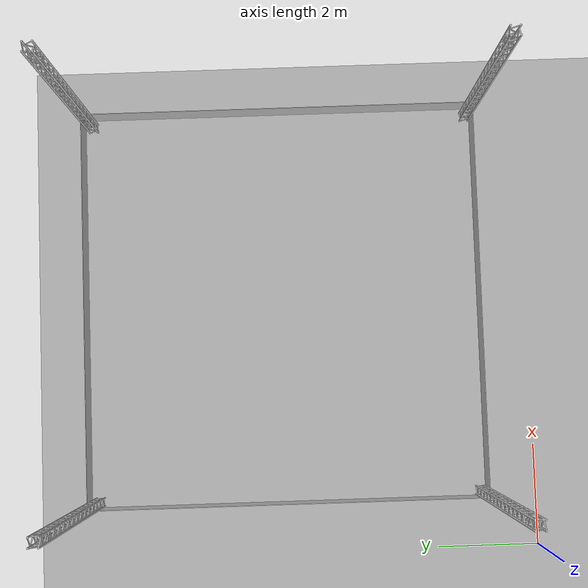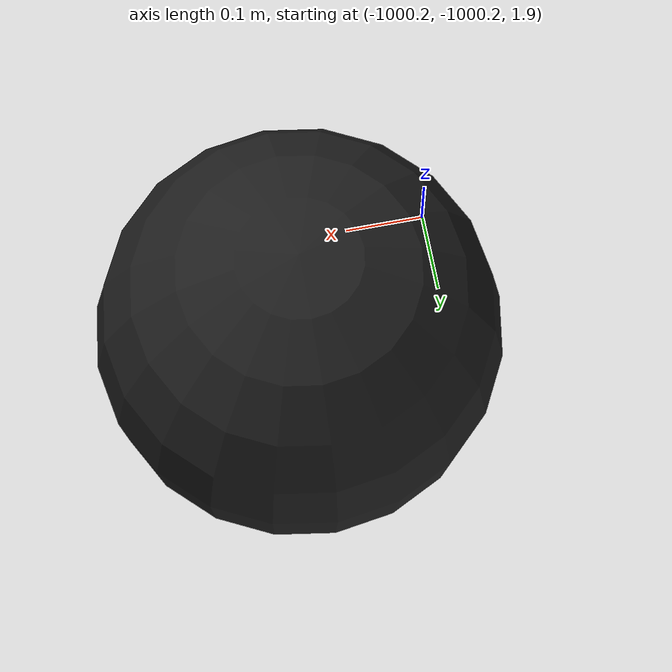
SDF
<?xml version="1.0" ?>
<?xml-model href="http://sdformat.org/schemas/root.xsd" schematypens="http://www.w3.org/2001/XMLSchema"?>
<sdf version="1.5">
  <world name="default">
    <plugin name="mrs_gazebo_static_transform_republisher_plugin" filename="libMRSGazeboStaticTransformRepublisher.so"/>

    <!-- coordinate system {-->
    <spherical_coordinates>
      <surface_model>EARTH_WGS84</surface_model>
      <latitude_deg>37.411802</latitude_deg>
      <longitude_deg>-121.995739</longitude_deg>
      <elevation>0.0</elevation>
      <heading_deg>0</heading_deg>
    </spherical_coordinates>

    <!-- physics engine {-->
    <physics name="default_physics" default="0" type="ode">
      <gravity>0 0 -9.8066</gravity>
      <ode>
        <solver>
          <type>quick</type>
          <iters>10</iters>
          <sor>1.3</sor>
          <use_dynamic_moi_rescaling>0</use_dynamic_moi_rescaling>
        </solver>
        <constraints>z
          <cfm>0</cfm>
          <erp>0.2</erp>
          <contact_max_correcting_vel>1000</contact_max_correcting_vel>
          <contact_surface_layer>0.001</contact_surface_layer>
        </constraints>
      </ode>
      <max_step_size>0.004</max_step_size>
      <real_time_factor>1</real_time_factor>
      <real_time_update_rate>250</real_time_update_rate>
      <magnetic_field>6.0e-06 2.3e-05 -4.2e-05</magnetic_field>
    </physics>

    <!-- turn off shadows {-->
    <scene>
      <shadows>false</shadows>
      <sky>
        <clouds/>
      </sky>
    </scene>

    <!-- sun {-->
    <light type="directional" name="sun">
      <cast_shadows>true</cast_shadows>
      <pose>250 250 600 0 0 0</pose>
      <diffuse>0.8 0.8 0.8 1</diffuse>
      <specular>0.2 0.2 0.2 1</specular>
      <attenuation>
        <range>1000</range>
        <constant>0.9</constant>
        <linear>0.01</linear>
        <quadratic>0.001</quadratic>
      </attenuation>
      <direction>0 0 -1</direction>
    </light>

    <!-- ground plane {-->
    <model name="ground_plane">
      <static>true</static>
      <link name="link">
        <collision name="collision">
          <pose>0 0 0 0 0 0</pose>
          <geometry>
            <plane>
              <normal>0 0 1</normal>
              <size>250 250</size>
            </plane>
          </geometry>
          <surface>
            <friction>
              <ode>
                <mu>1</mu>
                <mu2>1</mu2>
              </ode>
            </friction>
          </surface>
        </collision>
        <visual name="grass">
          <pose>0 0 -0.001 -1.57079632679 0 0</pose>
          <cast_shadows>false</cast_shadows>
          <geometry>
            <mesh>
              <uri>model://grass_plane/meshes/grass_plane.obj</uri>
              <scale>0.1 0.1 0.1</scale>
            </mesh>
          </geometry>
        </visual>
      </link>
    </model>

    <include>
      <uri>model://arena_spawn</uri>
      <!-- Pose ( x y z r p y ) -->
      <pose frame=''>1 1 0.0005 0 -0 0</pose>
    </include>

    <!-- THE VOID (for spawning objects out of camera view) {-->
    <model name='the_void'>
      <static>1</static>
      <link name='link'>
        <pose frame=''>0 0 0.1 0 -0 0</pose>
        <visual name='the_void'>
          <pose frame=''>0 0 2 0 -0 0</pose>
          <geometry>
            <sphere>
              <radius>0.25</radius>
            </sphere>
          </geometry>
          <material>
            <script>
              <uri>file://media/materials/scripts/Gazebo.material</uri>
              <name>Gazebo/Black</name>
            </script>
          </material>
        </visual>
        <self_collide>0</self_collide>
        <enable_wind>0</enable_wind>
        <kinematic>0</kinematic>
      </link>
      <pose frame=''>-1000 -1000 0 0 0 0</pose>
    </model>

    <!-- user camera {-->
    <gui>
      <camera name="camera">
        <pose>-5 0 5 0 0.78 0</pose>
      </camera>
    </gui>

    <!-- GUI frame synchronization {-->
    <plugin name="mrs_gazebo_rviz_cam_synchronizer" filename="libMRSGazeboRvizCameraSynchronizer.so" >
      <target_frame_id>gazebo_user_camera</target_frame_id>
      <world_origin_frame_id>uav1/gps_origin</world_origin_frame_id>
      <frame_to_follow>uav1::base_link</frame_to_follow>
    </plugin>

  </world>
</sdf>

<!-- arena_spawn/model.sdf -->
<sdf version='1.6'>
  <model name='arena_spawn'>
    <link name='link_arena'>
      <inertial>
        <mass>15</mass>
        <inertia>
          <ixx>1</ixx>
          <ixy>1</ixy>
          <ixz>1</ixz>
          <iyy>1</iyy>
          <iyz>1</iyz>
          <izz>1</izz>
        </inertia>
      </inertial>
      <self_collide>1</self_collide>
      <enable_wind>0</enable_wind>
      <kinematic>0</kinematic>
      <pose frame=''>0 0 0 0 -0 0</pose>
      <visual name='visual'>
        <pose frame=''>0 0 0 0 -0 0</pose>
        <geometry>
          <mesh>
            <uri>model://arena_spawn/meshes/Arena.obj</uri>
            <scale>1 1 1</scale>
          </mesh>
        </geometry>
        <transparency>0</transparency>
        <cast_shadows>1</cast_shadows>
      </visual>
      <collision name='collision'>
        <laser_retro>0</laser_retro>
        <max_contacts>10</max_contacts>
        <pose frame=''>0 0 0 0 -0 0</pose>
        <geometry>
          <mesh>
            <uri>model://arena_spawn/meshes/Arena.obj</uri>
            <scale>1 1 1</scale>
          </mesh>
        </geometry>
        <surface>
          <friction>
            <ode>
              <mu>1</mu>
              <mu2>1</mu2>
              <fdir1>0 0 0</fdir1>
              <slip1>0</slip1>
              <slip2>0</slip2>
            </ode>
            <torsional>
              <coefficient>1</coefficient>
              <patch_radius>100</patch_radius>
              <surface_radius>100</surface_radius>
              <use_patch_radius>1</use_patch_radius>
              <ode>
                <slip>0</slip>
              </ode>
            </torsional>
          </friction>
          <bounce>
            <restitution_coefficient>0</restitution_coefficient>
            <threshold>1e+06</threshold>
          </bounce>
          <contact>
            <collide_without_contact>0</collide_without_contact>
            <collide_without_contact_bitmask>1</collide_without_contact_bitmask>
            <collide_bitmask>1</collide_bitmask>
            <ode>
              <soft_cfm>0</soft_cfm>
              <soft_erp>0.2</soft_erp>
              <kp>1e+13</kp>
              <kd>1</kd>
              <max_vel>0.01</max_vel>
              <min_depth>0</min_depth>
            </ode>
            <bullet>
              <split_impulse>1</split_impulse>
              <split_impulse_penetration_threshold>-0.01</split_impulse_penetration_threshold>
              <soft_cfm>0</soft_cfm>
              <soft_erp>0.2</soft_erp>
              <kp>1e+13</kp>
              <kd>1</kd>
            </bullet>
          </contact>
        </surface>
      </collision>
    </link>
    <link name='pilar_1'>
      <inertial>
        <mass>1</mass>
        <inertia>
          <ixx>0.166667</ixx>
          <ixy>0</ixy>
          <ixz>0</ixz>
          <iyy>0.166667</iyy>
          <iyz>0</iyz>
          <izz>0.166667</izz>
        </inertia>
      </inertial>
      <self_collide>1</self_collide>
      <enable_wind>0</enable_wind>
      <kinematic>0</kinematic>
      <pose frame=''>0 0 0 0 -0 0</pose>
      <visual name='visual'>
        <pose frame=''>0 0 0 0 -0 0</pose>
        <geometry>
          <mesh>
            <uri>model://arena_spawn/meshes/pilar.obj</uri>
            <scale>1 1 1</scale>
          </mesh>
        </geometry>
        <transparency>0</transparency>
        <cast_shadows>1</cast_shadows>
      </visual>
      <collision name='collision'>
        <laser_retro>0</laser_retro>
        <max_contacts>10</max_contacts>
        <pose frame=''>0 0 0 0 -0 0</pose>
        <geometry>
          <mesh>
            <uri>model://arena_spawn/meshes/pilar.obj</uri>
            <scale>1 1 1</scale>
          </mesh>
        </geometry>
        <surface>
          <friction>
            <ode>
              <mu>1</mu>
              <mu2>1</mu2>
              <fdir1>0 0 0</fdir1>
              <slip1>0</slip1>
              <slip2>0</slip2>
            </ode>
            <torsional>
              <coefficient>1</coefficient>
              <patch_radius>100</patch_radius>
              <surface_radius>100</surface_radius>
              <use_patch_radius>1</use_patch_radius>
              <ode>
                <slip>0</slip>
              </ode>
            </torsional>
          </friction>
          <bounce>
            <restitution_coefficient>0</restitution_coefficient>
            <threshold>1e+06</threshold>
          </bounce>
          <contact>
            <collide_without_contact>0</collide_without_contact>
            <collide_without_contact_bitmask>1</collide_without_contact_bitmask>
            <collide_bitmask>1</collide_bitmask>
            <ode>
              <soft_cfm>0</soft_cfm>
              <soft_erp>0.2</soft_erp>
              <kp>1e+13</kp>
              <kd>1</kd>
              <max_vel>0.01</max_vel>
              <min_depth>0</min_depth>
            </ode>
            <bullet>
              <split_impulse>1</split_impulse>
              <split_impulse_penetration_threshold>-0.01</split_impulse_penetration_threshold>
              <soft_cfm>0</soft_cfm>
              <soft_erp>0.2</soft_erp>
              <kp>1e+13</kp>
              <kd>1</kd>
            </bullet>
          </contact>
        </surface>
      </collision>
    </link>
    <link name='pilar_2'>
      <inertial>
        <mass>1</mass>
        <inertia>
          <ixx>0.166667</ixx>
          <ixy>0</ixy>
          <ixz>0</ixz>
          <iyy>0.166667</iyy>
          <iyz>0</iyz>
          <izz>0.166667</izz>
        </inertia>
      </inertial>
      <self_collide>1</self_collide>
      <enable_wind>0</enable_wind>
      <kinematic>0</kinematic>
      <pose frame=''>7.7 0 0 0 -0 0</pose>
      <visual name='visual'>
        <pose frame=''>0 0 0 0 -0 0</pose>
        <geometry>
          <mesh>
            <uri>model://arena_spawn/meshes/pilar.obj</uri>
            <scale>1 1 1</scale>
          </mesh>
        </geometry>
        <transparency>0</transparency>
        <cast_shadows>1</cast_shadows>
      </visual>
      <collision name='collision'>
        <laser_retro>0</laser_retro>
        <max_contacts>10</max_contacts>
        <pose frame=''>0 0 0 0 -0 0</pose>
        <geometry>
          <mesh>
            <uri>model://arena_spawn/meshes/pilar.obj</uri>
            <scale>1 1 1</scale>
          </mesh>
        </geometry>
        <surface>
          <friction>
            <ode>
              <mu>1</mu>
              <mu2>1</mu2>
              <fdir1>0 0 0</fdir1>
              <slip1>0</slip1>
              <slip2>0</slip2>
            </ode>
            <torsional>
              <coefficient>1</coefficient>
              <patch_radius>100</patch_radius>
              <surface_radius>100</surface_radius>
              <use_patch_radius>1</use_patch_radius>
              <ode>
                <slip>0</slip>
              </ode>
            </torsional>
          </friction>
          <bounce>
            <restitution_coefficient>0</restitution_coefficient>
            <threshold>1e+06</threshold>
          </bounce>
          <contact>
            <collide_without_contact>0</collide_without_contact>
            <collide_without_contact_bitmask>1</collide_without_contact_bitmask>
            <collide_bitmask>1</collide_bitmask>
            <ode>
              <soft_cfm>0</soft_cfm>
              <soft_erp>0.2</soft_erp>
              <kp>1e+13</kp>
              <kd>1</kd>
              <max_vel>0.01</max_vel>
              <min_depth>0</min_depth>
            </ode>
            <bullet>
              <split_impulse>1</split_impulse>
              <split_impulse_penetration_threshold>-0.01</split_impulse_penetration_threshold>
              <soft_cfm>0</soft_cfm>
              <soft_erp>0.2</soft_erp>
              <kp>1e+13</kp>
              <kd>1</kd>
            </bullet>
          </contact>
        </surface>
      </collision>
    </link>
    <link name='pilar_3'>
      <inertial>
        <mass>1</mass>
        <inertia>
          <ixx>0.166667</ixx>
          <ixy>0</ixy>
          <ixz>0</ixz>
          <iyy>0.166667</iyy>
          <iyz>0</iyz>
          <izz>0.166667</izz>
        </inertia>
      </inertial>
      <self_collide>1</self_collide>
      <enable_wind>0</enable_wind>
      <kinematic>0</kinematic>
      <pose frame=''>0 7.7 0 0 -0 0</pose>
      <visual name='visual'>
        <pose frame=''>0 0 0 0 -0 0</pose>
        <geometry>
          <mesh>
            <uri>model://arena_spawn/meshes/pilar.obj</uri>
            <scale>1 1 1</scale>
          </mesh>
        </geometry>
        <transparency>0</transparency>
        <cast_shadows>1</cast_shadows>
      </visual>
      <collision name='collision'>
        <laser_retro>0</laser_retro>
        <max_contacts>10</max_contacts>
        <pose frame=''>0 0 0 0 -0 0</pose>
        <geometry>
          <mesh>
            <uri>model://arena_spawn/meshes/pilar.obj</uri>
            <scale>1 1 1</scale>
          </mesh>
        </geometry>
        <surface>
          <friction>
            <ode>
              <mu>1</mu>
              <mu2>1</mu2>
              <fdir1>0 0 0</fdir1>
              <slip1>0</slip1>
              <slip2>0</slip2>
            </ode>
            <torsional>
              <coefficient>1</coefficient>
              <patch_radius>100</patch_radius>
              <surface_radius>100</surface_radius>
              <use_patch_radius>1</use_patch_radius>
              <ode>
                <slip>0</slip>
              </ode>
            </torsional>
          </friction>
          <bounce>
            <restitution_coefficient>0</restitution_coefficient>
            <threshold>1e+06</threshold>
          </bounce>
          <contact>
            <collide_without_contact>0</collide_without_contact>
            <collide_without_contact_bitmask>1</collide_without_contact_bitmask>
            <collide_bitmask>1</collide_bitmask>
            <ode>
              <soft_cfm>0</soft_cfm>
              <soft_erp>0.2</soft_erp>
              <kp>1e+13</kp>
              <kd>1</kd>
              <max_vel>0.01</max_vel>
              <min_depth>0</min_depth>
            </ode>
            <bullet>
              <split_impulse>1</split_impulse>
              <split_impulse_penetration_threshold>-0.01</split_impulse_penetration_threshold>
              <soft_cfm>0</soft_cfm>
              <soft_erp>0.2</soft_erp>
              <kp>1e+13</kp>
              <kd>1</kd>
            </bullet>
          </contact>
        </surface>
      </collision>
    </link>
    <link name='pilar_4'>
      <inertial>
        <mass>1</mass>
        <inertia>
          <ixx>0.166667</ixx>
          <ixy>0</ixy>
          <ixz>0</ixz>
          <iyy>0.166667</iyy>
          <iyz>0</iyz>
          <izz>0.166667</izz>
        </inertia>
      </inertial>
      <self_collide>1</self_collide>
      <enable_wind>0</enable_wind>
      <kinematic>0</kinematic>
      <pose frame=''>7.7 7.7 0 0 -0 0</pose>
      <visual name='visual'>
        <pose frame=''>0 0 0 0 -0 0</pose>
        <geometry>
          <mesh>
            <uri>model://arena_spawn/meshes/pilar.obj</uri>
            <scale>1 1 1</scale>
          </mesh>
        </geometry>
        <transparency>0</transparency>
        <cast_shadows>1</cast_shadows>
      </visual>
      <collision name='collision'>
        <laser_retro>0</laser_retro>
        <max_contacts>10</max_contacts>
        <pose frame=''>0 0 0 0 -0 0</pose>
        <geometry>
          <mesh>
            <uri>model://arena_spawn/meshes/pilar.obj</uri>
            <scale>1 1 1</scale>
          </mesh>
        </geometry>
        <surface>
          <friction>
            <ode>
              <mu>1</mu>
              <mu2>1</mu2>
              <fdir1>0 0 0</fdir1>
              <slip1>0</slip1>
              <slip2>0</slip2>
            </ode>
            <torsional>
              <coefficient>1</coefficient>
              <patch_radius>100</patch_radius>
              <surface_radius>100</surface_radius>
              <use_patch_radius>1</use_patch_radius>
              <ode>
                <slip>0</slip>
              </ode>
            </torsional>
          </friction>
          <bounce>
            <restitution_coefficient>0</restitution_coefficient>
            <threshold>1e+06</threshold>
          </bounce>
          <contact>
            <collide_without_contact>0</collide_without_contact>
            <collide_without_contact_bitmask>1</collide_without_contact_bitmask>
            <collide_bitmask>1</collide_bitmask>
            <ode>
              <soft_cfm>0</soft_cfm>
              <soft_erp>0.2</soft_erp>
              <kp>1e+13</kp>
              <kd>1</kd>
              <max_vel>0.01</max_vel>
              <min_depth>0</min_depth>
            </ode>
            <bullet>
              <split_impulse>1</split_impulse>
              <split_impulse_penetration_threshold>-0.01</split_impulse_penetration_threshold>
              <soft_cfm>0</soft_cfm>
              <soft_erp>0.2</soft_erp>
              <kp>1e+13</kp>
              <kd>1</kd>
            </bullet>
          </contact>
        </surface>
      </collision>
    </link>
    <static>1</static>
    <pose frame=''>0 0 0.0005 0 -0 0</pose>
  </model>
</sdf>
